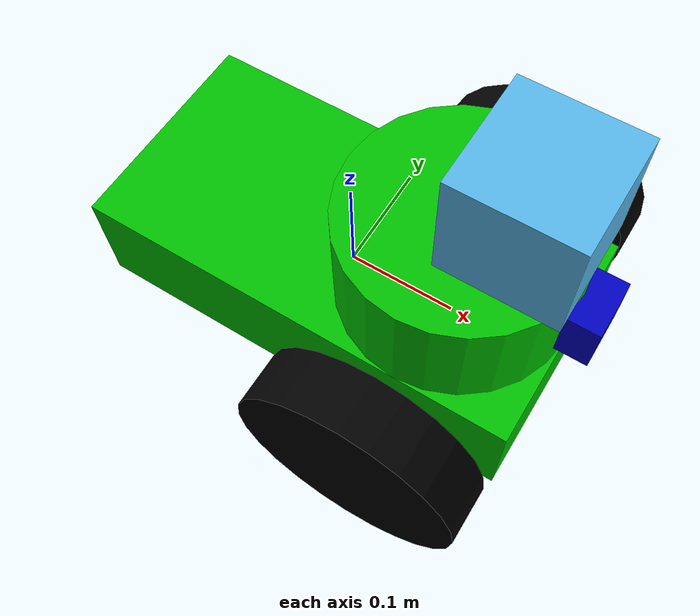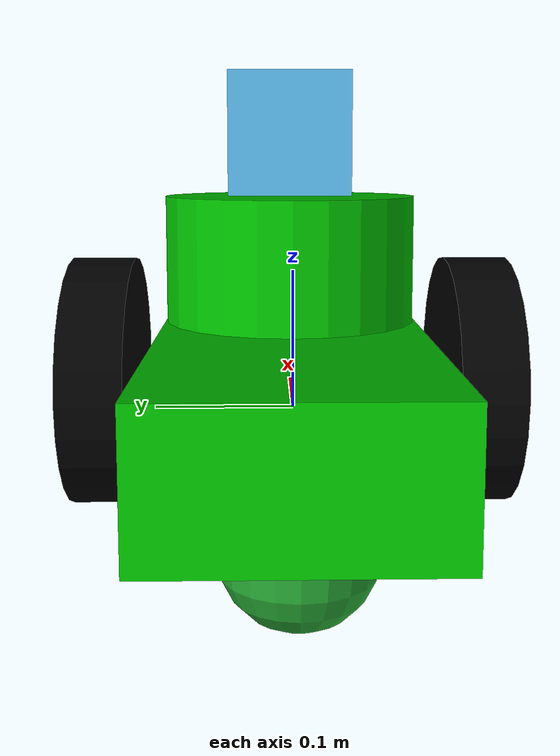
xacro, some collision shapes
<?xml version='1.0'?>

<robot name="udacity_bot" xmlns:xacro="http://www.ros.org/wiki/xacro">

  <xacro:include filename="$(find udacity_bot)/urdf/UNER_bot.gazebo" />

  <link name="robot_footprint"></link>

  <joint name="robot_footprint_joint" type="fixed">
    <origin xyz="0 0 0" rpy="0 0 0" />
    <parent link="robot_footprint"/>
    <child link="chassis" />
  </joint>

  <joint type="continuous" name="left_wheel_hinge">
    <origin xyz="0.1 0.15 0" rpy="0 0 0"/>
    <child link="left_wheel"/>
    <parent link="chassis"/>
    <axis xyz="0 1 0" rpy="0 0 0"/>
    <limit effort="10000" velocity="1000"/>
    <joint_properties damping="1.0" friction="1.0"/>
  </joint>

  <joint type="continuous" name="right_wheel_hinge">
    <origin xyz="0.1 -0.15 0" rpy="0 0 0"/>
    <child link="right_wheel"/>
    <parent link="chassis"/>
    <axis xyz="0 1 0" rpy="0 0 0"/>
    <limit effort="10000" velocity="1000"/>
    <joint_properties damping="1.0" friction="1.0"/>
  </joint>

  <joint name="neck_joint" type="fixed">
    <origin xyz="0 0 0" rpy="0 0 0" />
    <parent link="chassis"/>
    <child link="neck" />
  </joint>

  <joint type="fixed" name="camera_joint">
    <origin xyz="0.2 0 0.1" rpy="0 0 0"/>
    <child link="camera"/>
    <parent link="neck"/>
  </joint>

  <joint type="fixed" name="hokuyo_joint">
    <origin xyz=".15 0 .2" rpy="0 0 0"/>
    <child link="hokuyo"/>
    <parent link="neck"/>
  </joint>

  <link name="hokuyo">
    <inertial>
      <mass value="0.1"/>
      <origin xyz="0 0 0" rpy="0 0 0"/>
      <inertia
              ixx="1e-6" ixy="0" ixz="0"
              iyy="1e-6" iyz="0"
              izz="1e-6"
      />
    </inertial>

    <collision name='hokuyo_collision'>
      <origin xyz="0 0 0" rpy="0 0 0"/>
      <geometry>
        <box size="0.1 0.1 0.1"/>
      </geometry>
    </collision>

    <visual name='hokuyo_visual'>
      <origin xyz="0 0 0" rpy="0 0 0"/>
      <geometry>
        <mesh filename="package://udacity_bot/meshes/hokuyo.dae"/>
      </geometry>
    </visual>
  </link>

  <link name="camera">
    <inertial>
      <mass value="0.1"/>
      <origin xyz="0 0 0" rpy="0 0 0"/>
      <inertia
              ixx="1e-6" ixy="0" ixz="0"
              iyy="1e-6" iyz="0"
              izz="1e-6"
      />
    </inertial>

    <collision name='camera_collision'>
      <origin xyz="0 0 0" rpy="0 0 0"/>
      <geometry>
        <box size="0.05 0.05 0.05"/>
      </geometry>
    </collision>

    <visual name='camera_visual'>
      <origin xyz="0 0 0" rpy="0 0 0"/>
      <geometry>
        <box size="0.05 0.05 0.05"/>
      </geometry>
      <material name="Blue"/>
    </visual>
  </link>

  <link name="neck">
    <inertial>
      <mass value="3.0"/>
      <origin xyz="0.1 0 0.1" rpy="0 0 0"/>
      <inertia
              ixx="0.1" ixy="0" ixz="0"
              iyy="0.1" iyz="0"
              izz="0.1"
      />
    </inertial>

    <collision name='neck_collision'>
      <origin xyz="0.1 0 0.1" rpy="0 0 0"/>
      <geometry>
        <cylinder radius=".1" length= ".1"/>
      </geometry>
    </collision>

    <visual name='neck_visual'>
      <origin xyz="0.1 0 0.1" rpy="0 0 0"/>
      <geometry>
        <cylinder radius=".1" length= ".1"/>
      </geometry>
      <material name="Green"/>
    </visual>
  </link>

  <link name="left_wheel">
    <inertial>
      <mass value="5.0"/>
      <origin xyz="0 0 0" rpy="0 1.5707 1.5707"/>
      <inertia
              ixx="0.1" ixy="0" ixz="0"
              iyy="0.1" iyz="0"
              izz="0.1"
      />
    </inertial>

    <collision name='left_wheel_collision'>
      <origin xyz="0 0 0" rpy="0 1.5707 1.5707"/>
      <geometry>
        <cylinder radius="0.1" length="0.05"/>
      </geometry>
    </collision>

    <visual name='left_wheel_visual'>
      <origin xyz="0 0 0" rpy="0 1.5707 1.5707"/>
      <geometry>
        <cylinder radius="0.1" length="0.05"/>
      </geometry>
      <material name="Black"/>
    </visual>
  </link>

  <link name="right_wheel">
    <inertial>
      <mass value="5.0"/>
      <origin xyz="0 0 0" rpy="0 1.5707 1.5707"/>
      <inertia
              ixx="0.1" ixy="0" ixz="0"
              iyy="0.1" iyz="0"
              izz="0.1"
      />
    </inertial>

    <collision name='right_wheel_collision'>
      <origin xyz="0 0 0" rpy="0 1.5707 1.5707"/>
      <geometry>
        <cylinder radius="0.1" length="0.05"/>
      </geometry>
    </collision>

    <visual name='right_wheel_visual'>
      <origin xyz="0 0 0" rpy="0 1.5707 1.5707"/>
      <geometry>
        <cylinder radius="0.1" length="0.05"/>
      </geometry>
      <material name="Black"/>
    </visual>
  </link>

  <link name='chassis'>
    <pose>0 0 0.1 0 0 0</pose>

    <inertial>
      <mass value="10.0"/>
      <origin xyz="0.0 0 0" rpy=" 0 0 0"/>
      <inertia
              ixx="0.1" ixy="0" ixz="0"
              iyy="0.1" iyz="0"
              izz="0.1"
      />
    </inertial>

    <collision name='collision'>
      <origin xyz="0 0 0" rpy=" 0 0 0"/>
      <geometry>
        <box size=".4 .2 .1"/>
      </geometry>
    </collision>

    <visual name='chassis_visual'>
      <origin xyz="0 0 0" rpy=" 0 0 0"/>
      <geometry>
        <box size=".4 .2 .1"/>
      </geometry>
      <material name="Green"/>
    </visual>

    <collision name='back_caster_collision'>
      <origin xyz="-0.15 0 -0.05" rpy=" 0 0 0"/>
      <geometry>
        <sphere radius="0.05"/>
      </geometry>
      <surface>
        <friction>
          <ode>
            <mu>0</mu>
            <mu2>0</mu2>
            <slip1>1.0</slip1>
            <slip2>1.0</slip2>
          </ode>
        </friction>
      </surface>
    </collision>

    <visual name='back_caster_visual'>
      <origin xyz="-0.15 0 -0.05" rpy=" 0 0 0"/>
      <geometry>
        <sphere radius="0.05"/>
      </geometry>
    </visual>

  </link>
  <material name="Blue">
    <color rgba="0.0 0.0 0.75 1.0"/>
  </material>
  <material name="Red">
    <color rgba="0.75 0.0 0.0 1.0"/>
  </material>
  <material name="Green">
    <color rgba="0.0 0.75 0.0 1.0"/>
  </material>
  <material name="Black">
    <color rgba="0.0 0 0.0 1.0"/>
  </material>

</robot>
